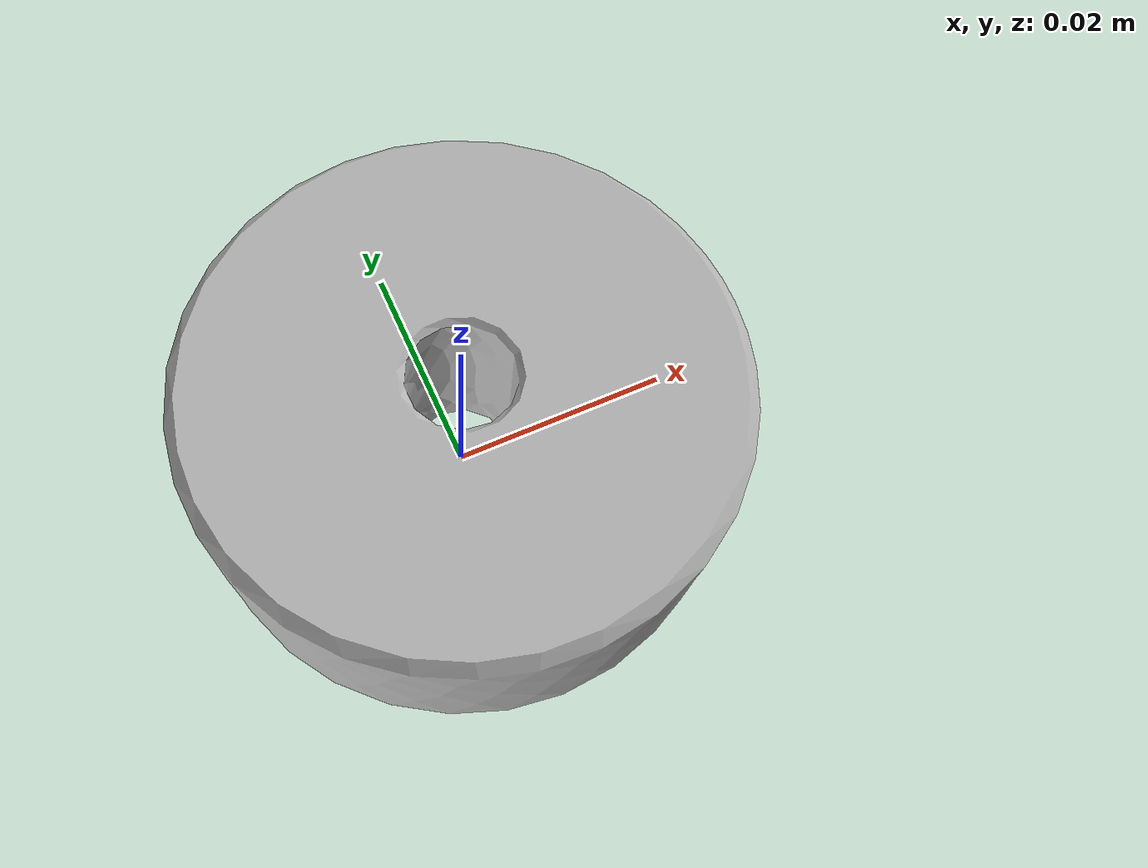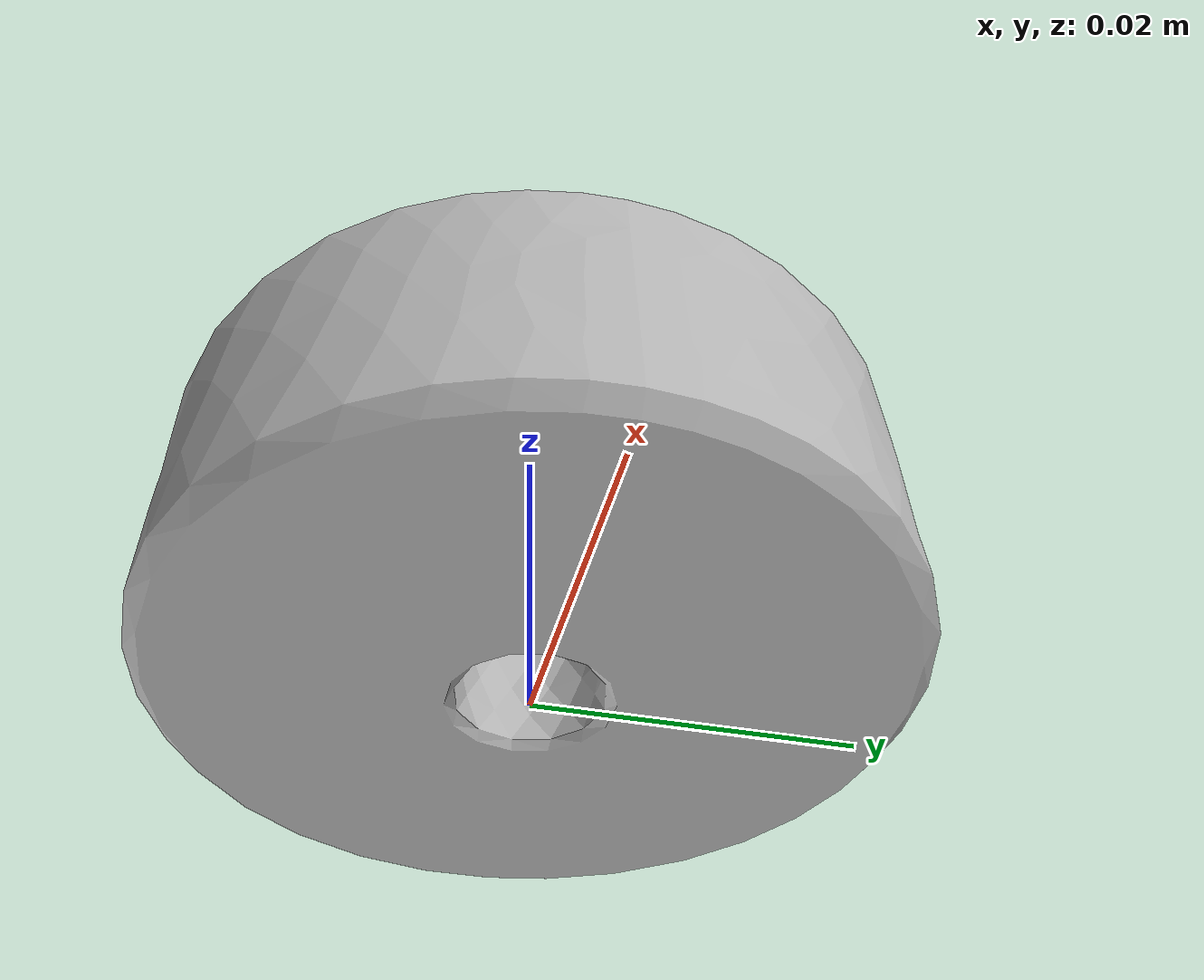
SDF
<?xml version='1.0'?>
<sdf version="1.4">
    <model name="lamp">
        <pose>0 0 0 0 0 0</pose>
        <static>true</static>
        <link name="lamp_model">
            <inertial>
                <mass>0.5</mass>
                <inertia>
                    <ixx>0.01</ixx>
                    <ixy>0.01</ixy>
                    <ixz>0.01</ixz>
                    <iyy>0.01</iyy>
                    <iyz>0.01</iyz>
                    <izz>0.01</izz>
                </inertia>
            </inertial>
            <collision name="collision">
                <pose> 0 0 0 0 0 0 </pose>
                <surface>
                    <friction>
                        <ode>
                            <mu>0.1</mu>
                            <mu2>0.1</mu2>
                            <slip1>0.1</slip1>
                            <slip2>0.1</slip2>
                        </ode>
                    </friction>
                     <contact>
                        <ode>
                            <kp>100000000</kp>
                            <kd>100</kd>
                        </ode>
                    </contact>
                </surface>
                <geometry>
                    <mesh>
                        <uri>model://lamp_model/meshes/workpiece_meshed.stl</uri>
                        <scale>0.001 0.001 0.001</scale>
                    </mesh>
                </geometry>
            </collision>
            <visual name="visual">
                <pose> 0 0 0 0 0 0 </pose>
                <geometry>
                   <mesh>
                        <uri>model://lamp_model/meshes/workpiece_meshed.stl</uri>
                        <scale>0.001 0.001 0.001</scale>
                   </mesh>
                </geometry>
            </visual>
        </link>
    </model>
</sdf>
